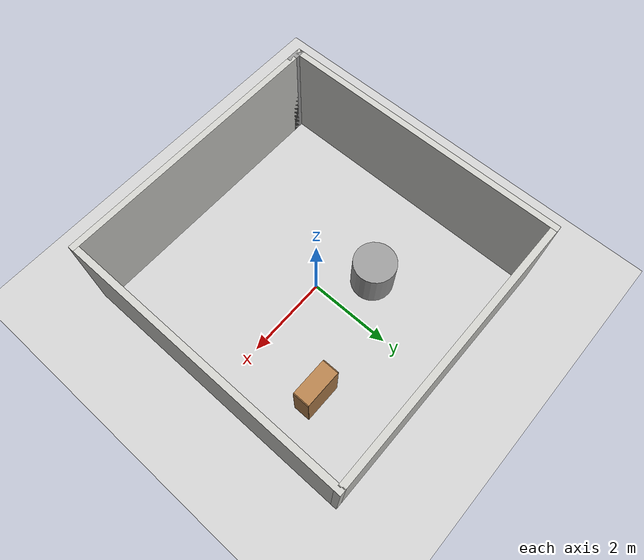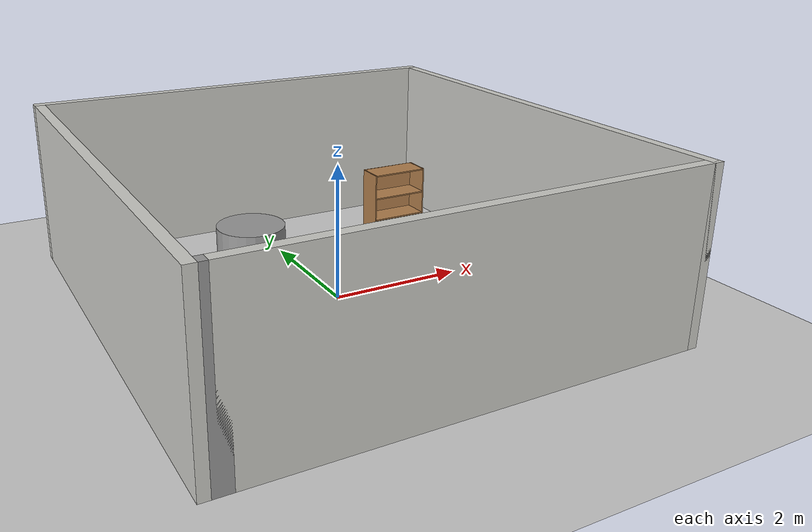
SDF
<sdf version="1.7">
 <world name="default">
  <light name="sun" type="directional">
   <pose>0 0 10 0 -0 0</pose>
   <diffuse>0.8 0.8 0.8 1</diffuse>
   <specular>0.2 0.2 0.2 1</specular>
   <attenuation>
    <range>1000</range>
    <constant>0.9</constant>
    <linear>0.01</linear>
    <quadratic>0.001</quadratic>
   </attenuation>
   <direction>-0.5 0.1 -0.9</direction>
   <spot><inner_angle>0</inner_angle><outer_angle>0</outer_angle><falloff>0</falloff></spot>
  </light>
  <model name="ground_plane">
   <static>1</static>
   <link name="link">
    <collision name="collision">
     <geometry><plane><normal>0 0 1</normal><size>100 100</size></plane></geometry>
     <surface>
      <contact><collide_bitmask>65535</collide_bitmask></contact>
      <friction><ode><mu>100</mu><mu2>50</mu2></ode></friction>
     </surface>
    </collision>
    <visual name="visual">
     <cast_shadows>0</cast_shadows>
     <geometry><plane><normal>0 0 1</normal><size>100 100</size></plane></geometry>
     <material>
      <script><uri>file://media/materials/scripts/gazebo.material</uri><name>Gazebo/Grey</name></script>
     </material>
    </visual>
   </link>
  </model>
  <gravity>0 0 -9.8</gravity>
  <magnetic_field>6e-06 2.3e-05 -4.2e-05</magnetic_field>
  <atmosphere type="adiabatic"/>
  <physics type="ode">
   <max_step_size>0.001</max_step_size>
   <real_time_factor>1</real_time_factor>
   <real_time_update_rate>0</real_time_update_rate>
  </physics>
  <scene><ambient>0.4 0.4 0.4 1</ambient><background>0.7 0.7 0.7 1</background><shadows>1</shadows></scene>
  <spherical_coordinates>
   <surface_model>EARTH_WGS84</surface_model>
   <latitude_deg>0</latitude_deg>
   <longitude_deg>0</longitude_deg>
   <elevation>0</elevation>
   <heading_deg>0</heading_deg>
  </spherical_coordinates>
  <model name="train_room">
   <link name="Wall_2">
    <collision name="Wall_2_Collision">
     <geometry><box><size>6.5 0.15 2.5</size></box></geometry>
     <pose>0 0 1.25 0 -0 0</pose>
    </collision>
    <visual name="Wall_2_Visual">
     <pose>0 0 1.25 0 -0 0</pose>
     <geometry><box><size>6.5 0.15 2.5</size></box></geometry>
     <material>
      <script><uri>file://media/materials/scripts/gazebo.material</uri><name>Gazebo/CeilingTiled</name></script>
      <ambient>1 1 1 1</ambient>
     </material>
     <meta><layer>0</layer></meta>
    </visual>
    <pose>0.125 -3.425 0 0 -0 0</pose>
   </link>
   <link name="Wall_4">
    <collision name="Wall_4_Collision">
     <geometry><box><size>7 0.15 2.5</size></box></geometry>
     <pose>0 0 1.25 0 -0 0</pose>
    </collision>
    <visual name="Wall_4_Visual">
     <pose>0 0 1.25 0 -0 0</pose>
     <geometry><box><size>7 0.15 2.5</size></box></geometry>
     <material>
      <script><uri>file://media/materials/scripts/gazebo.material</uri><name>Gazebo/CeilingTiled</name></script>
      <ambient>1 1 1 1</ambient>
     </material>
     <meta><layer>0</layer></meta>
    </visual>
    <pose>3.3 -0 0 0 -0 1.5708</pose>
   </link>
   <link name="Wall_5">
    <collision name="Wall_5_Collision">
     <geometry><box><size>6.75 0.15 2.5</size></box></geometry>
     <pose>0 0 1.25 0 -0 0</pose>
    </collision>
    <visual name="Wall_5_Visual">
     <pose>0 0 1.25 0 -0 0</pose>
     <geometry><box><size>6.75 0.15 2.5</size></box></geometry>
     <material>
      <script><uri>file://media/materials/scripts/gazebo.material</uri><name>Gazebo/CeilingTiled</name></script>
      <ambient>1 1 1 1</ambient>
     </material>
     <meta><layer>0</layer></meta>
    </visual>
    <pose>0 3.425 0 0 -0 3.14159</pose>
   </link>
   <link name="Wall_6">
    <collision name="Wall_6_Collision">
     <geometry><box><size>7 0.15 2.5</size></box></geometry>
     <pose>0 0 1.25 0 -0 0</pose>
    </collision>
    <visual name="Wall_6_Visual">
     <pose>0 0 1.25 0 -0 0</pose>
     <geometry><box><size>7 0.15 2.5</size></box></geometry>
     <material>
      <script><uri>file://media/materials/scripts/gazebo.material</uri><name>Gazebo/CeilingTiled</name></script>
      <ambient>1 1 1 1</ambient>
     </material>
     <meta><layer>0</layer></meta>
    </visual>
    <pose>-3.3 -0 0 0 -0 -1.5708</pose>
   </link>
   <link name="Wall_7">
    <collision name="Wall_7_Collision">
     <geometry><box><size>0.4 0.15 2.5</size></box></geometry>
     <pose>0 0 1.25 0 -0 0</pose>
    </collision>
    <visual name="Wall_7_Visual">
     <pose>0 0 1.25 0 -0 0</pose>
     <geometry><box><size>0.4 0.15 2.5</size></box></geometry>
     <material>
      <script><uri>file://media/materials/scripts/gazebo.material</uri><name>Gazebo/Grey</name></script>
      <ambient>1 1 1 1</ambient>
     </material>
     <meta><layer>0</layer></meta>
    </visual>
    <pose>-3.175 -3.425 0 0 -0 0</pose>
   </link>
   <static>1</static>
  </model>
  <light name="sun_clone" type="directional">
   <pose>-3.87496 20.7377 10 0 -0 0</pose>
   <diffuse>0.8 0.8 0.8 1</diffuse>
   <specular>0.2 0.2 0.2 1</specular>
   <direction>-0.483368 0.096674 -0.870063</direction>
   <attenuation>
    <range>1000</range>
    <constant>0.9</constant>
    <linear>0.01</linear>
    <quadratic>0.001</quadratic>
   </attenuation>
  </light>
  <model name="unit_cylinder">
   <pose>-0.966145 0.865019 0.5 0 -0 0</pose>
   <link name="link">
    <inertial>
     <mass>1</mass>
     <inertia><ixx>0.145833</ixx><ixy>0</ixy><ixz>0</ixz><iyy>0.145833</iyy><iyz>0</iyz><izz>0.125</izz></inertia>
    </inertial>
    <collision name="collision">
     <geometry><cylinder><radius>0.5</radius><length>1</length></cylinder></geometry>
    </collision>
    <visual name="visual">
     <geometry><cylinder><radius>0.5</radius><length>1</length></cylinder></geometry>
     <material>
      <script><name>Gazebo/Grey</name><uri>file://media/materials/scripts/gazebo.material</uri></script>
     </material>
    </visual>
   </link>
  </model>
  <model name="bookshelf">
   <static>1</static>
   <link name="link">
    <inertial><mass>1</mass></inertial>
    <collision name="back">
     <pose>0 0.005 0.6 0 -0 0</pose>
     <geometry><box><size>0.9 0.01 1.2</size></box></geometry>
    </collision>
    <visual name="visual1">
     <pose>0 0.005 0.6 0 -0 0</pose>
     <geometry><box><size>0.9 0.01 1.2</size></box></geometry>
     <material>
      <script><uri>file://media/materials/scripts/gazebo.material</uri><name>Gazebo/Wood</name></script>
     </material>
    </visual>
    <collision name="left_side">
     <pose>0.45 -0.195 0.6 0 -0 0</pose>
     <geometry><box><size>0.02 0.4 1.2</size></box></geometry>
    </collision>
    <visual name="visual2">
     <pose>0.45 -0.195 0.6 0 -0 0</pose>
     <geometry><box><size>0.02 0.4 1.2</size></box></geometry>
     <material>
      <script><uri>file://media/materials/scripts/gazebo.material</uri><name>Gazebo/Wood</name></script>
     </material>
    </visual>
    <collision name="right_side">
     <pose>-0.45 -0.195 0.6 0 -0 0</pose>
     <geometry><box><size>0.02 0.4 1.2</size></box></geometry>
    </collision>
    <visual name="visual3">
     <pose>-0.45 -0.195 0.6 0 -0 0</pose>
     <geometry><box><size>0.02 0.4 1.2</size></box></geometry>
     <material>
      <script><uri>file://media/materials/scripts/gazebo.material</uri><name>Gazebo/Wood</name></script>
     </material>
    </visual>
    <collision name="bottom">
     <pose>0 -0.195 0.03 0 -0 0</pose>
     <geometry><box><size>0.88 0.4 0.06</size></box></geometry>
    </collision>
    <visual name="visual4">
     <pose>0 -0.195 0.03 0 -0 0</pose>
     <geometry><box><size>0.88 0.4 0.06</size></box></geometry>
     <material>
      <script><uri>file://media/materials/scripts/gazebo.material</uri><name>Gazebo/Wood</name></script>
     </material>
    </visual>
    <collision name="top">
     <pose>0 -0.195 1.19 0 -0 0</pose>
     <geometry><box><size>0.88 0.4 0.02</size></box></geometry>
    </collision>
    <visual name="visual5">
     <pose>0 -0.195 1.19 0 -0 0</pose>
     <geometry><box><size>0.88 0.4 0.02</size></box></geometry>
     <material>
      <script><uri>file://media/materials/scripts/gazebo.material</uri><name>Gazebo/Wood</name></script>
     </material>
    </visual>
    <collision name="low_shelf">
     <pose>0 -0.195 0.43 0 -0 0</pose>
     <geometry><box><size>0.88 0.4 0.02</size></box></geometry>
    </collision>
    <visual name="visual6">
     <pose>0 -0.195 0.43 0 -0 0</pose>
     <geometry><box><size>0.88 0.4 0.02</size></box></geometry>
     <material>
      <script><uri>file://media/materials/scripts/gazebo.material</uri><name>Gazebo/Wood</name></script>
     </material>
    </visual>
    <collision name="high_shelf">
     <pose>0 -0.195 0.8 0 -0 0</pose>
     <geometry><box><size>0.88 0.4 0.02</size></box></geometry>
    </collision>
    <visual name="visual7">
     <pose>0 -0.195 0.8 0 -0 0</pose>
     <geometry><box><size>0.88 0.4 0.02</size></box></geometry>
     <material>
      <script><uri>file://media/materials/scripts/gazebo.material</uri><name>Gazebo/Wood</name></script>
     </material>
    </visual>
   </link>
   <pose>1.94558 1.89531 0 0 -0 0</pose>
  </model>
 </world>
</sdf>
